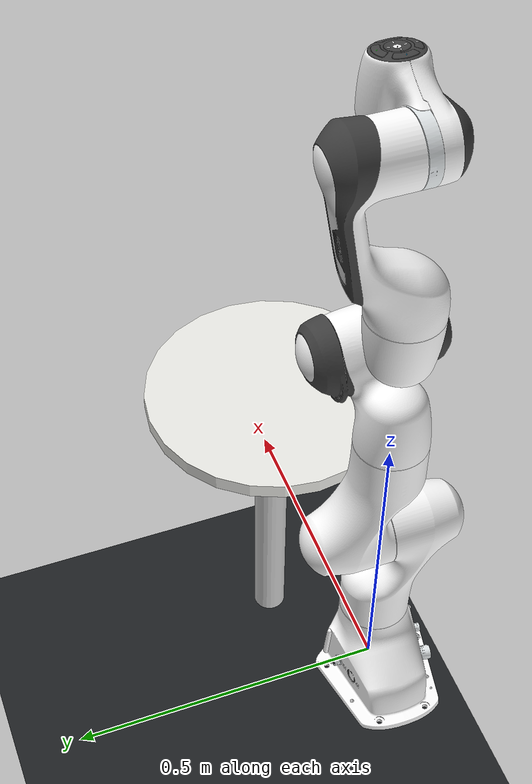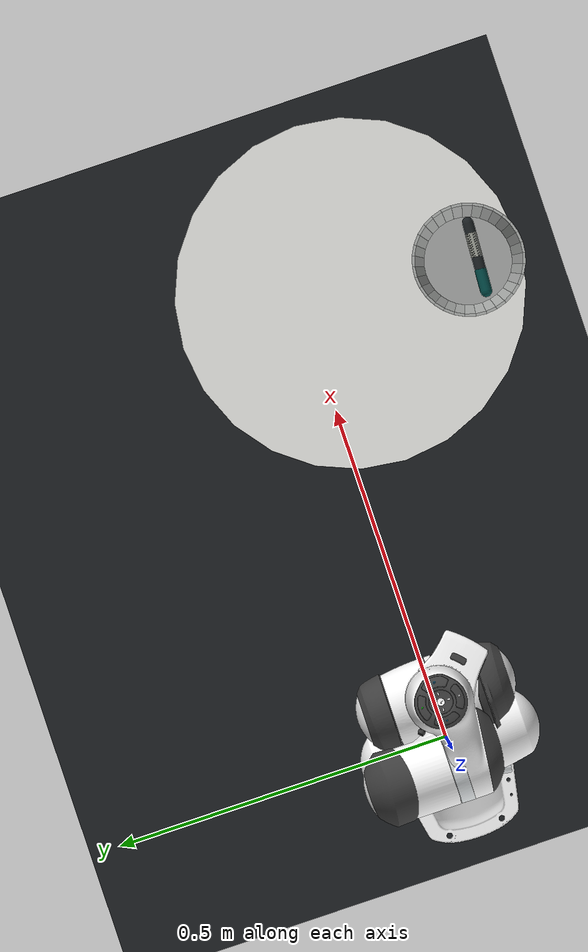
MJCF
<mujoco model="panda">
  <compiler angle="radian" autolimits="true" />
  <option integrator="implicitfast" timestep="0.001" cone="elliptic" impratio="10" />
  <default>
    <default class="panda">
      <material specular="0.5" shininess="0.25" />
      <joint armature="0.1" damping="1" axis="0 0 1" range="-2.8973 2.8973" />
      <general dyntype="none" biastype="affine" ctrlrange="-2.8973 2.8973" forcerange="-87 87" />
      <default class="finger">
        <joint axis="0 1 0" type="slide" range="0 0.04" />
      </default>
      <default class="visual">
        <geom type="mesh" contype="0" conaffinity="0" group="2" />
      </default>
      <default class="collision">
        <geom type="mesh" group="3" />
        <default class="fingertip_pad_collision_1">
          <geom type="box" size="0.0085 0.004 0.0085" pos="0 0.0055 0.0445" />
        </default>
        <default class="fingertip_pad_collision_2">
          <geom type="box" size="0.003 0.002 0.003" pos="0.0055 0.002 0.05" />
        </default>
        <default class="fingertip_pad_collision_3">
          <geom type="box" size="0.003 0.002 0.003" pos="-0.0055 0.002 0.05" />
        </default>
        <default class="fingertip_pad_collision_4">
          <geom type="box" size="0.003 0.002 0.0035" pos="0.0055 0.002 0.0395" />
        </default>
        <default class="fingertip_pad_collision_5">
          <geom type="box" size="0.003 0.002 0.0035" pos="-0.0055 0.002 0.0395" />
        </default>
      </default>
    </default>
    <default class="rq_2f85">
      <mesh scale="0.001 0.001 0.001" />
      <general biastype="affine" />
      <joint axis="1 0 0" />
      <default class="rq_driver">
        <joint range="0 0.8" armature="0.005" damping="0.1" solimplimit="0.95 0.99 0.001" solreflimit="0.005 1" />
      </default>
      <default class="rq_follower">
        <joint range="-0.872664 0.872664" armature="0.001" pos="0 -0.018 0.0065" solimplimit="0.95 0.99 0.001" solreflimit="0.005 1" />
      </default>
      <default class="rq_spring_link">
        <joint range="-0.29670597283 0.8" armature="0.001" stiffness="0.05" springref="2.62" damping="0.00125" />
      </default>
      <default class="rq_coupler">
        <joint range="-1.57 0" armature="0.001" solimplimit="0.95 0.99 0.001" solreflimit="0.005 1" />
      </default>
      <default class="rq_visual">
        <geom type="mesh" contype="0" conaffinity="0" group="2" />
      </default>
      <default class="rq_collision">
        <geom type="mesh" group="3" />
        <default class="rq_pad_box1">
          <geom mass="0" type="box" pos="0 -0.0026 0.028125" size="0.011 0.004 0.009375" friction="0.7" solimp="0.95 0.99 0.001" solref="0.004 1" priority="1" rgba="0.55 0.55 0.55 1" />
        </default>
        <default class="rq_pad_box2">
          <geom mass="0" type="box" pos="0 -0.0026 0.009375" size="0.011 0.004 0.009375" friction="0.6" solimp="0.95 0.99 0.001" solref="0.004 1" priority="1" rgba="0.45 0.45 0.45 1" />
        </default>
      </default>
    </default>
  </default>
  <asset>
    <material class="panda" name="white" rgba="1 1 1 1" />
    <material class="panda" name="off_white" rgba="0.901961 0.921569 0.929412 1" />
    <material class="panda" name="black" rgba="0.25 0.25 0.25 1" />
    <material class="panda" name="green" rgba="0 1 0 1" />
    <material class="panda" name="light_blue" rgba="0.039216 0.541176 0.780392 1" />
    <mesh name="link0_c" file="vendor/mujoco_menagerie/franka_emika_panda/assets/link0.stl" />
    <mesh name="link1_c" file="vendor/mujoco_menagerie/franka_emika_panda/assets/link1.stl" />
    <mesh name="link2_c" file="vendor/mujoco_menagerie/franka_emika_panda/assets/link2.stl" />
    <mesh name="link3_c" file="vendor/mujoco_menagerie/franka_emika_panda/assets/link3.stl" />
    <mesh name="link4_c" file="vendor/mujoco_menagerie/franka_emika_panda/assets/link4.stl" />
    <mesh name="link5_c0" file="vendor/mujoco_menagerie/franka_emika_panda/assets/link5_collision_0.obj" />
    <mesh name="link5_c1" file="vendor/mujoco_menagerie/franka_emika_panda/assets/link5_collision_1.obj" />
    <mesh name="link5_c2" file="vendor/mujoco_menagerie/franka_emika_panda/assets/link5_collision_2.obj" />
    <mesh name="link6_c" file="vendor/mujoco_menagerie/franka_emika_panda/assets/link6.stl" />
    <mesh name="link7_c" file="vendor/mujoco_menagerie/franka_emika_panda/assets/link7.stl" />
    <mesh name="hand_c" file="vendor/mujoco_menagerie/franka_emika_panda/assets/hand.stl" />
    <mesh file="vendor/mujoco_menagerie/franka_emika_panda/assets/link0_0.obj" />
    <mesh file="vendor/mujoco_menagerie/franka_emika_panda/assets/link0_1.obj" />
    <mesh file="vendor/mujoco_menagerie/franka_emika_panda/assets/link0_2.obj" />
    <mesh file="vendor/mujoco_menagerie/franka_emika_panda/assets/link0_3.obj" />
    <mesh file="vendor/mujoco_menagerie/franka_emika_panda/assets/link0_4.obj" />
    <mesh file="vendor/mujoco_menagerie/franka_emika_panda/assets/link0_5.obj" />
    <mesh file="vendor/mujoco_menagerie/franka_emika_panda/assets/link0_7.obj" />
    <mesh file="vendor/mujoco_menagerie/franka_emika_panda/assets/link0_8.obj" />
    <mesh file="vendor/mujoco_menagerie/franka_emika_panda/assets/link0_9.obj" />
    <mesh file="vendor/mujoco_menagerie/franka_emika_panda/assets/link0_10.obj" />
    <mesh file="vendor/mujoco_menagerie/franka_emika_panda/assets/link0_11.obj" />
    <mesh file="vendor/mujoco_menagerie/franka_emika_panda/assets/link1.obj" />
    <mesh file="vendor/mujoco_menagerie/franka_emika_panda/assets/link2.obj" />
    <mesh file="vendor/mujoco_menagerie/franka_emika_panda/assets/link3_0.obj" />
    <mesh file="vendor/mujoco_menagerie/franka_emika_panda/assets/link3_1.obj" />
    <mesh file="vendor/mujoco_menagerie/franka_emika_panda/assets/link3_2.obj" />
    <mesh file="vendor/mujoco_menagerie/franka_emika_panda/assets/link3_3.obj" />
    <mesh file="vendor/mujoco_menagerie/franka_emika_panda/assets/link4_0.obj" />
    <mesh file="vendor/mujoco_menagerie/franka_emika_panda/assets/link4_1.obj" />
    <mesh file="vendor/mujoco_menagerie/franka_emika_panda/assets/link4_2.obj" />
    <mesh file="vendor/mujoco_menagerie/franka_emika_panda/assets/link4_3.obj" />
    <mesh file="vendor/mujoco_menagerie/franka_emika_panda/assets/link5_0.obj" />
    <mesh file="vendor/mujoco_menagerie/franka_emika_panda/assets/link5_1.obj" />
    <mesh file="vendor/mujoco_menagerie/franka_emika_panda/assets/link5_2.obj" />
    <mesh file="vendor/mujoco_menagerie/franka_emika_panda/assets/link6_0.obj" />
    <mesh file="vendor/mujoco_menagerie/franka_emika_panda/assets/link6_1.obj" />
    <mesh file="vendor/mujoco_menagerie/franka_emika_panda/assets/link6_2.obj" />
    <mesh file="vendor/mujoco_menagerie/franka_emika_panda/assets/link6_3.obj" />
    <mesh file="vendor/mujoco_menagerie/franka_emika_panda/assets/link6_4.obj" />
    <mesh file="vendor/mujoco_menagerie/franka_emika_panda/assets/link6_5.obj" />
    <mesh file="vendor/mujoco_menagerie/franka_emika_panda/assets/link6_6.obj" />
    <mesh file="vendor/mujoco_menagerie/franka_emika_panda/assets/link6_7.obj" />
    <mesh file="vendor/mujoco_menagerie/franka_emika_panda/assets/link6_8.obj" />
    <mesh file="vendor/mujoco_menagerie/franka_emika_panda/assets/link6_9.obj" />
    <mesh file="vendor/mujoco_menagerie/franka_emika_panda/assets/link6_10.obj" />
    <mesh file="vendor/mujoco_menagerie/franka_emika_panda/assets/link6_11.obj" />
    <mesh file="vendor/mujoco_menagerie/franka_emika_panda/assets/link6_12.obj" />
    <mesh file="vendor/mujoco_menagerie/franka_emika_panda/assets/link6_13.obj" />
    <mesh file="vendor/mujoco_menagerie/franka_emika_panda/assets/link6_14.obj" />
    <mesh file="vendor/mujoco_menagerie/franka_emika_panda/assets/link6_15.obj" />
    <mesh file="vendor/mujoco_menagerie/franka_emika_panda/assets/link6_16.obj" />
    <mesh file="vendor/mujoco_menagerie/franka_emika_panda/assets/link7_0.obj" />
    <mesh file="vendor/mujoco_menagerie/franka_emika_panda/assets/link7_1.obj" />
    <mesh file="vendor/mujoco_menagerie/franka_emika_panda/assets/link7_2.obj" />
    <mesh file="vendor/mujoco_menagerie/franka_emika_panda/assets/link7_3.obj" />
    <mesh file="vendor/mujoco_menagerie/franka_emika_panda/assets/link7_4.obj" />
    <mesh file="vendor/mujoco_menagerie/franka_emika_panda/assets/link7_5.obj" />
    <mesh file="vendor/mujoco_menagerie/franka_emika_panda/assets/link7_6.obj" />
    <mesh file="vendor/mujoco_menagerie/franka_emika_panda/assets/link7_7.obj" />
    <mesh file="vendor/mujoco_menagerie/franka_emika_panda/assets/hand_0.obj" />
    <mesh file="vendor/mujoco_menagerie/franka_emika_panda/assets/hand_1.obj" />
    <mesh file="vendor/mujoco_menagerie/franka_emika_panda/assets/hand_2.obj" />
    <mesh file="vendor/mujoco_menagerie/franka_emika_panda/assets/hand_3.obj" />
    <mesh file="vendor/mujoco_menagerie/franka_emika_panda/assets/hand_4.obj" />
    <mesh file="vendor/mujoco_menagerie/franka_emika_panda/assets/finger_0.obj" />
    <mesh file="vendor/mujoco_menagerie/franka_emika_panda/assets/finger_1.obj" />
    <material name="rq_metal" rgba="0.58 0.58 0.58 1" />
    <material name="rq_silicone" rgba="0.1882 0.1882 0.1882 1" />
    <material name="rq_gray" rgba="0.4627 0.4627 0.4627 1" />
    <material name="rq_black" rgba="0.149 0.149 0.149 1" />
    <mesh class="rq_2f85" file="vendor/mujoco_menagerie/robotiq_2f85/assets/base_mount.stl" name="rq_base_mount" />
    <mesh class="rq_2f85" file="vendor/mujoco_menagerie/robotiq_2f85/assets/base.stl" name="rq_base" />
    <mesh class="rq_2f85" file="vendor/mujoco_menagerie/robotiq_2f85/assets/driver.stl" name="rq_driver" />
    <mesh class="rq_2f85" file="vendor/mujoco_menagerie/robotiq_2f85/assets/coupler.stl" name="rq_coupler" />
    <mesh class="rq_2f85" file="vendor/mujoco_menagerie/robotiq_2f85/assets/follower.stl" name="rq_follower" />
    <mesh class="rq_2f85" file="vendor/mujoco_menagerie/robotiq_2f85/assets/pad.stl" name="rq_pad" />
    <mesh class="rq_2f85" file="vendor/mujoco_menagerie/robotiq_2f85/assets/silicone_pad.stl" name="rq_silicone_pad" />
    <mesh class="rq_2f85" file="vendor/mujoco_menagerie/robotiq_2f85/assets/spring_link.stl" name="rq_spring_link" />
    <mesh name="bowl_wall_0" vertex="0.062 0 0 0.0608086874 0.0120956 0 0.066 0 0 0.0647318285 0.0128759613 0 0.079 0 0.055 0.0774820372 0.0154121354 0.055 0.083 0 0.055 0.0814051783 0.0161924967 0.055" />
    <mesh name="bowl_wall_1" vertex="0.0608086874 0.0120956 0 0.057280531 0.0237263728 0 0.0647318285 0.0128759613 0 0.0609760491 0.0252571065 0 0.0774820372 0.0154121354 0.055 0.0729864831 0.0302319912 0.055 0.0814051783 0.0161924967 0.055 0.0766820012 0.0317627249 0.055" />
    <mesh name="bowl_wall_2" vertex="0.057280531 0.0237263728 0 0.051551116 0.0344453544 0 0.0609760491 0.0252571065 0 0.0548769944 0.0366676354 0 0.0729864831 0.0302319912 0.055 0.0656860994 0.0438900484 0.055 0.0766820012 0.0317627249 0.055 0.0690119778 0.0461123293 0.055" />
    <mesh name="bowl_wall_3" vertex="0.051551116 0.0344453544 0 0.0438406204 0.0438406204 0 0.0548769944 0.0366676354 0 0.0466690476 0.0466690476 0 0.0656860994 0.0438900484 0.055 0.0558614357 0.0558614357 0.055 0.0690119778 0.0461123293 0.055 0.0586898628 0.0586898628 0.055" />
    <mesh name="bowl_wall_4" vertex="0.0438406204 0.0438406204 0 0.0344453544 0.051551116 0 0.0466690476 0.0466690476 0 0.0366676354 0.0548769944 0 0.0558614357 0.0558614357 0.055 0.0438900484 0.0656860994 0.055 0.0586898628 0.0586898628 0.055 0.0461123293 0.0690119778 0.055" />
    <mesh name="bowl_wall_5" vertex="0.0344453544 0.051551116 0 0.0237263728 0.057280531 0 0.0366676354 0.0548769944 0 0.0252571065 0.0609760491 0 0.0438900484 0.0656860994 0.055 0.0302319912 0.0729864831 0.055 0.0461123293 0.0690119778 0.055 0.0317627249 0.0766820012 0.055" />
    <mesh name="bowl_wall_6" vertex="0.0237263728 0.057280531 0 0.0120956 0.0608086874 0 0.0252571065 0.0609760491 0 0.0128759613 0.0647318285 0 0.0302319912 0.0729864831 0.055 0.0154121354 0.0774820372 0.055 0.0317627249 0.0766820012 0.055 0.0161924967 0.0814051783 0.055" />
    <mesh name="bowl_wall_7" vertex="0.0120956 0.0608086874 0 3.79640508e-18 0.062 0 0.0128759613 0.0647318285 0 4.04133444e-18 0.066 0 0.0154121354 0.0774820372 0.055 4.83735486e-18 0.079 0.055 0.0161924967 0.0814051783 0.055 5.08228422e-18 0.083 0.055" />
    <mesh name="bowl_wall_8" vertex="3.79640508e-18 0.062 0 -0.0120956 0.0608086874 0 4.04133444e-18 0.066 0 -0.0128759613 0.0647318285 0 4.83735486e-18 0.079 0.055 -0.0154121354 0.0774820372 0.055 5.08228422e-18 0.083 0.055 -0.0161924967 0.0814051783 0.055" />
    <mesh name="bowl_wall_9" vertex="-0.0120956 0.0608086874 0 -0.0237263728 0.057280531 0 -0.0128759613 0.0647318285 0 -0.0252571065 0.0609760491 0 -0.0154121354 0.0774820372 0.055 -0.0302319912 0.0729864831 0.055 -0.0161924967 0.0814051783 0.055 -0.0317627249 0.0766820012 0.055" />
    <mesh name="bowl_wall_10" vertex="-0.0237263728 0.057280531 0 -0.0344453544 0.051551116 0 -0.0252571065 0.0609760491 0 -0.0366676354 0.0548769944 0 -0.0302319912 0.0729864831 0.055 -0.0438900484 0.0656860994 0.055 -0.0317627249 0.0766820012 0.055 -0.0461123293 0.0690119778 0.055" />
    <mesh name="bowl_wall_11" vertex="-0.0344453544 0.051551116 0 -0.0438406204 0.0438406204 0 -0.0366676354 0.0548769944 0 -0.0466690476 0.0466690476 0 -0.0438900484 0.0656860994 0.055 -0.0558614357 0.0558614357 0.055 -0.0461123293 0.0690119778 0.055 -0.0586898628 0.0586898628 0.055" />
    <mesh name="bowl_wall_12" vertex="-0.0438406204 0.0438406204 0 -0.051551116 0.0344453544 0 -0.0466690476 0.0466690476 0 -0.0548769944 0.0366676354 0 -0.0558614357 0.0558614357 0.055 -0.0656860994 0.0438900484 0.055 -0.0586898628 0.0586898628 0.055 -0.0690119778 0.0461123293 0.055" />
    <mesh name="bowl_wall_13" vertex="-0.051551116 0.0344453544 0 -0.057280531 0.0237263728 0 -0.0548769944 0.0366676354 0 -0.0609760491 0.0252571065 0 -0.0656860994 0.0438900484 0.055 -0.0729864831 0.0302319912 0.055 -0.0690119778 0.0461123293 0.055 -0.0766820012 0.0317627249 0.055" />
    <mesh name="bowl_wall_14" vertex="-0.057280531 0.0237263728 0 -0.0608086874 0.0120956 0 -0.0609760491 0.0252571065 0 -0.0647318285 0.0128759613 0 -0.0729864831 0.0302319912 0.055 -0.0774820372 0.0154121354 0.055 -0.0766820012 0.0317627249 0.055 -0.0814051783 0.0161924967 0.055" />
    <mesh name="bowl_wall_15" vertex="-0.0608086874 0.0120956 0 -0.062 7.59281015e-18 0 -0.0647318285 0.0128759613 0 -0.066 8.08266887e-18 0 -0.0774820372 0.0154121354 0.055 -0.079 9.67470971e-18 0.055 -0.0814051783 0.0161924967 0.055 -0.083 1.01645684e-17 0.055" />
    <mesh name="bowl_wall_16" vertex="-0.062 7.59281015e-18 0 -0.0608086874 -0.0120956 0 -0.066 8.08266887e-18 0 -0.0647318285 -0.0128759613 0 -0.079 9.67470971e-18 0.055 -0.0774820372 -0.0154121354 0.055 -0.083 1.01645684e-17 0.055 -0.0814051783 -0.0161924967 0.055" />
    <mesh name="bowl_wall_17" vertex="-0.0608086874 -0.0120956 0 -0.057280531 -0.0237263728 0 -0.0647318285 -0.0128759613 0 -0.0609760491 -0.0252571065 0 -0.0774820372 -0.0154121354 0.055 -0.0729864831 -0.0302319912 0.055 -0.0814051783 -0.0161924967 0.055 -0.0766820012 -0.0317627249 0.055" />
    <mesh name="bowl_wall_18" vertex="-0.057280531 -0.0237263728 0 -0.051551116 -0.0344453544 0 -0.0609760491 -0.0252571065 0 -0.0548769944 -0.0366676354 0 -0.0729864831 -0.0302319912 0.055 -0.0656860994 -0.0438900484 0.055 -0.0766820012 -0.0317627249 0.055 -0.0690119778 -0.0461123293 0.055" />
    <mesh name="bowl_wall_19" vertex="-0.051551116 -0.0344453544 0 -0.0438406204 -0.0438406204 0 -0.0548769944 -0.0366676354 0 -0.0466690476 -0.0466690476 0 -0.0656860994 -0.0438900484 0.055 -0.0558614357 -0.0558614357 0.055 -0.0690119778 -0.0461123293 0.055 -0.0586898628 -0.0586898628 0.055" />
    <mesh name="bowl_wall_20" vertex="-0.0438406204 -0.0438406204 0 -0.0344453544 -0.051551116 0 -0.0466690476 -0.0466690476 0 -0.0366676354 -0.0548769944 0 -0.0558614357 -0.0558614357 0.055 -0.0438900484 -0.0656860994 0.055 -0.0586898628 -0.0586898628 0.055 -0.0461123293 -0.0690119778 0.055" />
    <mesh name="bowl_wall_21" vertex="-0.0344453544 -0.051551116 0 -0.0237263728 -0.057280531 0 -0.0366676354 -0.0548769944 0 -0.0252571065 -0.0609760491 0 -0.0438900484 -0.0656860994 0.055 -0.0302319912 -0.0729864831 0.055 -0.0461123293 -0.0690119778 0.055 -0.0317627249 -0.0766820012 0.055" />
    <mesh name="bowl_wall_22" vertex="-0.0237263728 -0.057280531 0 -0.0120956 -0.0608086874 0 -0.0252571065 -0.0609760491 0 -0.0128759613 -0.0647318285 0 -0.0302319912 -0.0729864831 0.055 -0.0154121354 -0.0774820372 0.055 -0.0317627249 -0.0766820012 0.055 -0.0161924967 -0.0814051783 0.055" />
    <mesh name="bowl_wall_23" vertex="-0.0120956 -0.0608086874 0 -1.13892152e-17 -0.062 0 -0.0128759613 -0.0647318285 0 -1.21240033e-17 -0.066 0 -0.0154121354 -0.0774820372 0.055 -1.45120646e-17 -0.079 0.055 -0.0161924967 -0.0814051783 0.055 -1.52468526e-17 -0.083 0.055" />
    <mesh name="bowl_wall_24" vertex="-1.13892152e-17 -0.062 0 0.0120956 -0.0608086874 0 -1.21240033e-17 -0.066 0 0.0128759613 -0.0647318285 0 -1.45120646e-17 -0.079 0.055 0.0154121354 -0.0774820372 0.055 -1.52468526e-17 -0.083 0.055 0.0161924967 -0.0814051783 0.055" />
    <mesh name="bowl_wall_25" vertex="0.0120956 -0.0608086874 0 0.0237263728 -0.057280531 0 0.0128759613 -0.0647318285 0 0.0252571065 -0.0609760491 0 0.0154121354 -0.0774820372 0.055 0.0302319912 -0.0729864831 0.055 0.0161924967 -0.0814051783 0.055 0.0317627249 -0.0766820012 0.055" />
    <mesh name="bowl_wall_26" vertex="0.0237263728 -0.057280531 0 0.0344453544 -0.051551116 0 0.0252571065 -0.0609760491 0 0.0366676354 -0.0548769944 0 0.0302319912 -0.0729864831 0.055 0.0438900484 -0.0656860994 0.055 0.0317627249 -0.0766820012 0.055 0.0461123293 -0.0690119778 0.055" />
    <mesh name="bowl_wall_27" vertex="0.0344453544 -0.051551116 0 0.0438406204 -0.0438406204 0 0.0366676354 -0.0548769944 0 0.0466690476 -0.0466690476 0 0.0438900484 -0.0656860994 0.055 0.0558614357 -0.0558614357 0.055 0.0461123293 -0.0690119778 0.055 0.0586898628 -0.0586898628 0.055" />
    <mesh name="bowl_wall_28" vertex="0.0438406204 -0.0438406204 0 0.051551116 -0.0344453544 0 0.0466690476 -0.0466690476 0 0.0548769944 -0.0366676354 0 0.0558614357 -0.0558614357 0.055 0.0656860994 -0.0438900484 0.055 0.0586898628 -0.0586898628 0.055 0.0690119778 -0.0461123293 0.055" />
    <mesh name="bowl_wall_29" vertex="0.051551116 -0.0344453544 0 0.057280531 -0.0237263728 0 0.0548769944 -0.0366676354 0 0.0609760491 -0.0252571065 0 0.0656860994 -0.0438900484 0.055 0.0729864831 -0.0302319912 0.055 0.0690119778 -0.0461123293 0.055 0.0766820012 -0.0317627249 0.055" />
    <mesh name="bowl_wall_30" vertex="0.057280531 -0.0237263728 0 0.0608086874 -0.0120956 0 0.0609760491 -0.0252571065 0 0.0647318285 -0.0128759613 0 0.0729864831 -0.0302319912 0.055 0.0774820372 -0.0154121354 0.055 0.0766820012 -0.0317627249 0.055 0.0814051783 -0.0161924967 0.055" />
    <mesh name="bowl_wall_31" vertex="0.0608086874 -0.0120956 0 0.062 -1.51856203e-17 0 0.0647318285 -0.0128759613 0 0.066 -1.61653377e-17 0 0.0774820372 -0.0154121354 0.055 0.079 -1.93494194e-17 0.055 0.0814051783 -0.0161924967 0.055 0.083 -2.03291369e-17 0.055" />
  </asset>
  <worldbody>
    <light name="top" pos="0 0 2" mode="trackcom" castshadow="false" />
    <body name="link0" childclass="panda" gravcomp="1">
      <inertial mass="0.629769" pos="-0.041018 -0.00014 0.049974" fullinertia="0.00315 0.00388 0.004285 8.2904e-7 0.00015 8.2299e-6" />
      <geom mesh="link0_0" material="off_white" class="visual" />
      <geom mesh="link0_1" material="black" class="visual" />
      <geom mesh="link0_2" material="off_white" class="visual" />
      <geom mesh="link0_3" material="black" class="visual" />
      <geom mesh="link0_4" material="off_white" class="visual" />
      <geom mesh="link0_5" material="black" class="visual" />
      <geom mesh="link0_7" material="white" class="visual" />
      <geom mesh="link0_8" material="white" class="visual" />
      <geom mesh="link0_9" material="black" class="visual" />
      <geom mesh="link0_10" material="off_white" class="visual" />
      <geom mesh="link0_11" material="white" class="visual" />
      <geom mesh="link0_c" class="collision" />
      <body name="link1" pos="0 0 0.333" gravcomp="1">
        <inertial mass="4.970684" pos="0.003875 0.002081 -0.04762" fullinertia="0.70337 0.70661 0.0091170 -0.00013900 0.0067720 0.019169" />
        <joint name="joint1" />
        <geom material="white" mesh="link1" class="visual" />
        <geom mesh="link1_c" class="collision" />
        <body name="link2" quat="1 -1 0 0" gravcomp="1">
          <inertial mass="0.646926" pos="-0.003141 -0.02872 0.003495" fullinertia="0.0079620 2.8110e-2 2.5995e-2 -3.925e-3 1.0254e-2 7.04e-4" />
          <joint name="joint2" range="-1.7628 1.7628" />
          <geom material="white" mesh="link2" class="visual" />
          <geom mesh="link2_c" class="collision" />
          <body name="link3" pos="0 -0.316 0" quat="1 1 0 0" gravcomp="1">
            <joint name="joint3" />
            <inertial mass="3.228604" pos="2.7518e-2 3.9252e-2 -6.6502e-2" fullinertia="3.7242e-2 3.6155e-2 1.083e-2 -4.761e-3 -1.1396e-2 -1.2805e-2" />
            <geom mesh="link3_0" material="white" class="visual" />
            <geom mesh="link3_1" material="white" class="visual" />
            <geom mesh="link3_2" material="white" class="visual" />
            <geom mesh="link3_3" material="black" class="visual" />
            <geom mesh="link3_c" class="collision" />
            <body name="link4" pos="0.0825 0 0" quat="1 1 0 0" gravcomp="1">
              <inertial mass="3.587895" pos="-5.317e-2 1.04419e-1 2.7454e-2" fullinertia="2.5853e-2 1.9552e-2 2.8323e-2 7.796e-3 -1.332e-3 8.641e-3" />
              <joint name="joint4" range="-3.0718 -0.0698" />
              <geom mesh="link4_0" material="white" class="visual" />
              <geom mesh="link4_1" material="white" class="visual" />
              <geom mesh="link4_2" material="black" class="visual" />
              <geom mesh="link4_3" material="white" class="visual" />
              <geom mesh="link4_c" class="collision" />
              <body name="link5" pos="-0.0825 0.384 0" quat="1 -1 0 0" gravcomp="1">
                <inertial mass="1.225946" pos="-1.1953e-2 4.1065e-2 -3.8437e-2" fullinertia="3.5549e-2 2.9474e-2 8.627e-3 -2.117e-3 -4.037e-3 2.29e-4" />
                <joint name="joint5" />
                <geom mesh="link5_0" material="black" class="visual" />
                <geom mesh="link5_1" material="white" class="visual" />
                <geom mesh="link5_2" material="white" class="visual" />
                <geom mesh="link5_c0" class="collision" />
                <geom mesh="link5_c1" class="collision" />
                <geom mesh="link5_c2" class="collision" />
                <body name="link6" quat="1 1 0 0" gravcomp="1">
                  <inertial mass="1.666555" pos="6.0149e-2 -1.4117e-2 -1.0517e-2" fullinertia="1.964e-3 4.354e-3 5.433e-3 1.09e-4 -1.158e-3 3.41e-4" />
                  <joint name="joint6" range="-0.0175 3.7525" />
                  <geom mesh="link6_0" material="off_white" class="visual" />
                  <geom mesh="link6_1" material="white" class="visual" />
                  <geom mesh="link6_2" material="black" class="visual" />
                  <geom mesh="link6_3" material="white" class="visual" />
                  <geom mesh="link6_4" material="white" class="visual" />
                  <geom mesh="link6_5" material="white" class="visual" />
                  <geom mesh="link6_6" material="white" class="visual" />
                  <geom mesh="link6_7" material="light_blue" class="visual" />
                  <geom mesh="link6_8" material="light_blue" class="visual" />
                  <geom mesh="link6_9" material="black" class="visual" />
                  <geom mesh="link6_10" material="black" class="visual" />
                  <geom mesh="link6_11" material="white" class="visual" />
                  <geom mesh="link6_12" material="green" class="visual" />
                  <geom mesh="link6_13" material="white" class="visual" />
                  <geom mesh="link6_14" material="black" class="visual" />
                  <geom mesh="link6_15" material="black" class="visual" />
                  <geom mesh="link6_16" material="white" class="visual" />
                  <geom mesh="link6_c" class="collision" />
                  <body name="link7" pos="0.088 0 0" quat="1 1 0 0" gravcomp="1">
                    <inertial mass="7.35522e-01" pos="1.0517e-2 -4.252e-3 6.1597e-2" fullinertia="1.2516e-2 1.0027e-2 4.815e-3 -4.28e-4 -1.196e-3 -7.41e-4" />
                    <joint name="joint7" />
                    <geom mesh="link7_0" material="white" class="visual" />
                    <geom mesh="link7_1" material="black" class="visual" />
                    <geom mesh="link7_2" material="black" class="visual" />
                    <geom mesh="link7_3" material="black" class="visual" />
                    <geom mesh="link7_4" material="black" class="visual" />
                    <geom mesh="link7_5" material="black" class="visual" />
                    <geom mesh="link7_6" material="black" class="visual" />
                    <geom mesh="link7_7" material="white" class="visual" />
                    <geom mesh="link7_c" class="collision" />
                    <body name="tool_flange" pos="0 0 0.107" quat="0.9238795325 0 0 -0.3826834324" gravcomp="1">
                      <site name="flange_site" size=".003" />
                      <body name="rq_base_mount" pos="0 0 0.007" childclass="rq_2f85" gravcomp="1">
                        <geom class="rq_visual" mesh="rq_base_mount" material="rq_black" />
                        <geom class="rq_collision" mesh="rq_base_mount" />
                        <body name="rq_base" pos="0 0 0.0038" quat="1 0 0 -1" gravcomp="1">
                          <inertial mass="0.777441" pos="0 -2.70394e-05 0.0354675" quat="1 -0.00152849 0 0" diaginertia="0.000260285 0.000225381 0.000152708" />
                          <geom class="rq_visual" mesh="rq_base" material="rq_black" />
                          <geom class="rq_collision" mesh="rq_base" />
                          <site name="rq_pinch" pos="0 0 0.145" type="sphere" group="5" rgba="0.9 0.9 0.9 1" size="0.005" />
                          <body name="rq_right_driver" pos="0 0.0306011 0.054904" gravcomp="1">
                            <inertial mass="0.00899563" pos="2.96931e-12 0.0177547 0.00107314" quat="0.681301 0.732003 0 0" diaginertia="1.72352e-06 1.60906e-06 3.22006e-07" />
                            <joint name="rq_right_driver_joint" class="rq_driver" />
                            <geom class="rq_visual" mesh="rq_driver" material="rq_gray" />
                            <geom class="rq_collision" mesh="rq_driver" />
                            <body name="rq_right_coupler" pos="0 0.0315 -0.0041" gravcomp="1">
                              <inertial mass="0.0140974" pos="0 0.00301209 0.0232175" quat="0.705636 -0.0455904 0.0455904 0.705636" diaginertia="4.16206e-06 3.52216e-06 8.88131e-07" />
                              <joint name="rq_right_coupler_joint" class="rq_coupler" />
                              <geom class="rq_visual" mesh="rq_coupler" material="rq_black" />
                              <geom class="rq_collision" mesh="rq_coupler" />
                            </body>
                          </body>
                          <body name="rq_right_spring_link" pos="0 0.0132 0.0609" gravcomp="1">
                            <inertial mass="0.0221642" pos="-8.65005e-09 0.0181624 0.0212658" quat="0.663403 -0.244737 0.244737 0.663403" diaginertia="8.96853e-06 6.71733e-06 2.63931e-06" />
                            <joint name="rq_right_spring_link_joint" class="rq_spring_link" />
                            <geom class="rq_visual" mesh="rq_spring_link" material="rq_black" />
                            <geom class="rq_collision" mesh="rq_spring_link" />
                            <body name="rq_right_follower" pos="0 0.055 0.0375" gravcomp="1">
                              <inertial mass="0.0125222" pos="0 -0.011046 0.0124786" quat="1 0.1664 0 0" diaginertia="2.67415e-06 2.4559e-06 6.02031e-07" />
                              <joint name="rq_right_follower_joint" class="rq_follower" />
                              <geom class="rq_visual" mesh="rq_follower" material="rq_black" />
                              <geom class="rq_collision" mesh="rq_follower" />
                              <body name="rq_right_pad" pos="0 -0.0189 0.01352" gravcomp="1">
                                <geom class="rq_pad_box1" name="rq_right_pad1" />
                                <geom class="rq_pad_box2" name="rq_right_pad2" />
                                <inertial mass="0.0035" pos="0 -0.0025 0.0185" quat="0.707107 0 0 0.707107" diaginertia="4.73958e-07 3.64583e-07 1.23958e-07" />
                                <geom class="rq_visual" mesh="rq_pad" />
                                <body name="rq_right_silicone_pad" gravcomp="1">
                                  <geom class="rq_visual" mesh="rq_silicone_pad" material="rq_black" />
                                </body>
                              </body>
                            </body>
                          </body>
                          <body name="rq_left_driver" pos="0 -0.0306011 0.054904" quat="0 0 0 1" gravcomp="1">
                            <inertial mass="0.00899563" pos="0 0.0177547 0.00107314" quat="0.681301 0.732003 0 0" diaginertia="1.72352e-06 1.60906e-06 3.22006e-07" />
                            <joint name="rq_left_driver_joint" class="rq_driver" />
                            <geom class="rq_visual" mesh="rq_driver" material="rq_gray" />
                            <geom class="rq_collision" mesh="rq_driver" />
                            <body name="rq_left_coupler" pos="0 0.0315 -0.0041" gravcomp="1">
                              <inertial mass="0.0140974" pos="0 0.00301209 0.0232175" quat="0.705636 -0.0455904 0.0455904 0.705636" diaginertia="4.16206e-06 3.52216e-06 8.88131e-07" />
                              <joint name="rq_left_coupler_joint" class="rq_coupler" />
                              <geom class="rq_visual" mesh="rq_coupler" material="rq_black" />
                              <geom class="rq_collision" mesh="rq_coupler" />
                            </body>
                          </body>
                          <body name="rq_left_spring_link" pos="0 -0.0132 0.0609" quat="0 0 0 1" gravcomp="1">
                            <inertial mass="0.0221642" pos="-8.65005e-09 0.0181624 0.0212658" quat="0.663403 -0.244737 0.244737 0.663403" diaginertia="8.96853e-06 6.71733e-06 2.63931e-06" />
                            <joint name="rq_left_spring_link_joint" class="rq_spring_link" />
                            <geom class="rq_visual" mesh="rq_spring_link" material="rq_black" />
                            <geom class="rq_collision" mesh="rq_spring_link" />
                            <body name="rq_left_follower" pos="0 0.055 0.0375" gravcomp="1">
                              <inertial mass="0.0125222" pos="0 -0.011046 0.0124786" quat="1 0.1664 0 0" diaginertia="2.67415e-06 2.4559e-06 6.02031e-07" />
                              <joint name="rq_left_follower_joint" class="rq_follower" />
                              <geom class="rq_visual" mesh="rq_follower" material="rq_black" />
                              <geom class="rq_collision" mesh="rq_follower" />
                              <body name="rq_left_pad" pos="0 -0.0189 0.01352" gravcomp="1">
                                <geom class="rq_pad_box1" name="rq_left_pad1" />
                                <geom class="rq_pad_box2" name="rq_left_pad2" />
                                <inertial mass="0.0035" pos="0 -0.0025 0.0185" quat="1 0 0 1" diaginertia="4.73958e-07 3.64583e-07 1.23958e-07" />
                                <geom class="rq_visual" mesh="rq_pad" />
                                <body name="rq_left_silicone_pad" gravcomp="1">
                                  <geom class="rq_visual" mesh="rq_silicone_pad" material="rq_black" />
                                </body>
                              </body>
                            </body>
                          </body>
                        </body>
                      </body>
                    </body>
                  </body>
                </body>
              </body>
            </body>
          </body>
        </body>
      </body>
    </body>
    <light pos=".4 -.1 2" dir="0 0 -1" diffuse=".65 .65 .65" castshadow="false" />
    <geom name="floor" type="plane" size="3 3 .1" pos="0 0 -.85" rgba=".12 .13 .14 1" />
    <camera name="ext1" pos="0.365679991 -0.422668111 0.431105219" quat="0.842129202 0.348788599 -0.181374309 -0.369145336" resolution="320 180" sensorsize="320 180" focalpixel="143.667215 143.667215" principalpixel="0 0" />
    <camera name="ext2" pos="0.450217446 0.29805365 0.400278018" quat="-0.219758095 -0.104919958 0.336116407 0.909793352" resolution="320 180" sensorsize="320 180" focalpixel="139.955752 139.955752" principalpixel="0 0" />
    <body name="table" pos="0.657256695 -0.0750696136 -0.0551144008">
      <geom name="table_top" type="cylinder" size="0.25742751 0.015" rgba=".92 .92 .9 1" friction="0.6 0.005 0.0001" />
      <geom type="cylinder" pos="0 0 -.35" size=".035 .35" rgba=".8 .8 .8 1" />
    </body>
    <body name="bowl" pos="0.647 -0.253 -0.0401144008" quat="1 0 0 0">
      <freejoint name="bowl_free" />
      <geom name="bowl_base" type="cylinder" pos="0 0 0.004" size="0.066 0.004" mass="0.063" rgba=".65 .66 .65 1" friction="0.5 0.005 0.0001" />
      <geom name="bowl_wall_0" type="mesh" mesh="bowl_wall_0" mass="0.0036562499999999998" rgba=".68 .69 .68 1" friction="0.5 0.005 0.0001" />
      <geom name="bowl_wall_1" type="mesh" mesh="bowl_wall_1" mass="0.0036562499999999998" rgba=".68 .69 .68 1" friction="0.5 0.005 0.0001" />
      <geom name="bowl_wall_2" type="mesh" mesh="bowl_wall_2" mass="0.0036562499999999998" rgba=".68 .69 .68 1" friction="0.5 0.005 0.0001" />
      <geom name="bowl_wall_3" type="mesh" mesh="bowl_wall_3" mass="0.0036562499999999998" rgba=".68 .69 .68 1" friction="0.5 0.005 0.0001" />
      <geom name="bowl_wall_4" type="mesh" mesh="bowl_wall_4" mass="0.0036562499999999998" rgba=".68 .69 .68 1" friction="0.5 0.005 0.0001" />
      <geom name="bowl_wall_5" type="mesh" mesh="bowl_wall_5" mass="0.0036562499999999998" rgba=".68 .69 .68 1" friction="0.5 0.005 0.0001" />
      <geom name="bowl_wall_6" type="mesh" mesh="bowl_wall_6" mass="0.0036562499999999998" rgba=".68 .69 .68 1" friction="0.5 0.005 0.0001" />
      <geom name="bowl_wall_7" type="mesh" mesh="bowl_wall_7" mass="0.0036562499999999998" rgba=".68 .69 .68 1" friction="0.5 0.005 0.0001" />
      <geom name="bowl_wall_8" type="mesh" mesh="bowl_wall_8" mass="0.0036562499999999998" rgba=".68 .69 .68 1" friction="0.5 0.005 0.0001" />
      <geom name="bowl_wall_9" type="mesh" mesh="bowl_wall_9" mass="0.0036562499999999998" rgba=".68 .69 .68 1" friction="0.5 0.005 0.0001" />
      <geom name="bowl_wall_10" type="mesh" mesh="bowl_wall_10" mass="0.0036562499999999998" rgba=".68 .69 .68 1" friction="0.5 0.005 0.0001" />
      <geom name="bowl_wall_11" type="mesh" mesh="bowl_wall_11" mass="0.0036562499999999998" rgba=".68 .69 .68 1" friction="0.5 0.005 0.0001" />
      <geom name="bowl_wall_12" type="mesh" mesh="bowl_wall_12" mass="0.0036562499999999998" rgba=".68 .69 .68 1" friction="0.5 0.005 0.0001" />
      <geom name="bowl_wall_13" type="mesh" mesh="bowl_wall_13" mass="0.0036562499999999998" rgba=".68 .69 .68 1" friction="0.5 0.005 0.0001" />
      <geom name="bowl_wall_14" type="mesh" mesh="bowl_wall_14" mass="0.0036562499999999998" rgba=".68 .69 .68 1" friction="0.5 0.005 0.0001" />
      <geom name="bowl_wall_15" type="mesh" mesh="bowl_wall_15" mass="0.0036562499999999998" rgba=".68 .69 .68 1" friction="0.5 0.005 0.0001" />
      <geom name="bowl_wall_16" type="mesh" mesh="bowl_wall_16" mass="0.0036562499999999998" rgba=".68 .69 .68 1" friction="0.5 0.005 0.0001" />
      <geom name="bowl_wall_17" type="mesh" mesh="bowl_wall_17" mass="0.0036562499999999998" rgba=".68 .69 .68 1" friction="0.5 0.005 0.0001" />
      <geom name="bowl_wall_18" type="mesh" mesh="bowl_wall_18" mass="0.0036562499999999998" rgba=".68 .69 .68 1" friction="0.5 0.005 0.0001" />
      <geom name="bowl_wall_19" type="mesh" mesh="bowl_wall_19" mass="0.0036562499999999998" rgba=".68 .69 .68 1" friction="0.5 0.005 0.0001" />
      <geom name="bowl_wall_20" type="mesh" mesh="bowl_wall_20" mass="0.0036562499999999998" rgba=".68 .69 .68 1" friction="0.5 0.005 0.0001" />
      <geom name="bowl_wall_21" type="mesh" mesh="bowl_wall_21" mass="0.0036562499999999998" rgba=".68 .69 .68 1" friction="0.5 0.005 0.0001" />
      <geom name="bowl_wall_22" type="mesh" mesh="bowl_wall_22" mass="0.0036562499999999998" rgba=".68 .69 .68 1" friction="0.5 0.005 0.0001" />
      <geom name="bowl_wall_23" type="mesh" mesh="bowl_wall_23" mass="0.0036562499999999998" rgba=".68 .69 .68 1" friction="0.5 0.005 0.0001" />
      <geom name="bowl_wall_24" type="mesh" mesh="bowl_wall_24" mass="0.0036562499999999998" rgba=".68 .69 .68 1" friction="0.5 0.005 0.0001" />
      <geom name="bowl_wall_25" type="mesh" mesh="bowl_wall_25" mass="0.0036562499999999998" rgba=".68 .69 .68 1" friction="0.5 0.005 0.0001" />
      <geom name="bowl_wall_26" type="mesh" mesh="bowl_wall_26" mass="0.0036562499999999998" rgba=".68 .69 .68 1" friction="0.5 0.005 0.0001" />
      <geom name="bowl_wall_27" type="mesh" mesh="bowl_wall_27" mass="0.0036562499999999998" rgba=".68 .69 .68 1" friction="0.5 0.005 0.0001" />
      <geom name="bowl_wall_28" type="mesh" mesh="bowl_wall_28" mass="0.0036562499999999998" rgba=".68 .69 .68 1" friction="0.5 0.005 0.0001" />
      <geom name="bowl_wall_29" type="mesh" mesh="bowl_wall_29" mass="0.0036562499999999998" rgba=".68 .69 .68 1" friction="0.5 0.005 0.0001" />
      <geom name="bowl_wall_30" type="mesh" mesh="bowl_wall_30" mass="0.0036562499999999998" rgba=".68 .69 .68 1" friction="0.5 0.005 0.0001" />
      <geom name="bowl_wall_31" type="mesh" mesh="bowl_wall_31" mass="0.0036562499999999998" rgba=".68 .69 .68 1" friction="0.5 0.005 0.0001" />
    </body>
    <body name="pen" pos="0.648 -0.267 -0.0232784008" quat="0.0299955002 0 0 0.999550034">
      <freejoint name="pen_free" />
      <geom name="pen_barrel" type="capsule" fromto="-0.0516 0 0 0.02 0 0" size="0.0084" mass="0.01296" rgba=".12 .14 .15 1" friction="0.8 0.01 0.0001" condim="4" solref=".004 1" />
      <geom name="pen_cap" type="capsule" fromto="0.02 0 0 0.0516 0 0" size="0.008735999999999999" mass="0.00504" rgba=".01 .30 .29 1" friction="0.8 0.01 0.0001" condim="4" solref=".004 1" />
      <geom name="pen_label" type="cylinder" pos="-.018 0 0" quat=".70710678 0 .70710678 0" size="0.0084168 0.018" rgba=".62 .63 .59 1" contype="0" conaffinity="0" mass="0" />
    </body>
  </worldbody>
  <actuator>
    <general class="panda" name="actuator1" joint="joint1" gainprm="4500" biasprm="0 -4500 -450" />
    <general class="panda" name="actuator2" joint="joint2" gainprm="4500" biasprm="0 -4500 -450" ctrlrange="-1.7628 1.7628" />
    <general class="panda" name="actuator3" joint="joint3" gainprm="3500" biasprm="0 -3500 -350" />
    <general class="panda" name="actuator4" joint="joint4" gainprm="3500" biasprm="0 -3500 -350" ctrlrange="-3.0718 -0.0698" />
    <general class="panda" name="actuator5" joint="joint5" gainprm="2000" biasprm="0 -2000 -200" forcerange="-12 12" />
    <general class="panda" name="actuator6" joint="joint6" gainprm="2000" biasprm="0 -2000 -200" forcerange="-12 12" ctrlrange="-0.0175 3.7525" />
    <general class="panda" name="actuator7" joint="joint7" gainprm="2000" biasprm="0 -2000 -200" forcerange="-12 12" />
    <general class="rq_2f85" name="rq_fingers_actuator" tendon="rq_split" forcerange="-5 5" ctrlrange="0 255" gainprm="0.3137255 0 0" biasprm="0 -100 -10" />
  </actuator>
  <contact>
    <exclude body1="link0" body2="link1" />
    <exclude body1="rq_base" body2="rq_left_driver" />
    <exclude body1="rq_base" body2="rq_right_driver" />
    <exclude body1="rq_base" body2="rq_left_spring_link" />
    <exclude body1="rq_base" body2="rq_right_spring_link" />
    <exclude body1="rq_right_coupler" body2="rq_right_follower" />
    <exclude body1="rq_left_coupler" body2="rq_left_follower" />
    <pair geom1="pen_barrel" geom2="bowl_base" condim="3" friction=".8 .8 .005 .0001 .0001" solimp=".98 .995 .001" solref=".004 1" />
    <pair geom1="pen_barrel" geom2="bowl_wall_0" condim="3" friction=".8 .8 .005 .0001 .0001" solimp=".98 .995 .001" solref=".004 1" />
    <pair geom1="pen_barrel" geom2="bowl_wall_1" condim="3" friction=".8 .8 .005 .0001 .0001" solimp=".98 .995 .001" solref=".004 1" />
    <pair geom1="pen_barrel" geom2="bowl_wall_2" condim="3" friction=".8 .8 .005 .0001 .0001" solimp=".98 .995 .001" solref=".004 1" />
    <pair geom1="pen_barrel" geom2="bowl_wall_3" condim="3" friction=".8 .8 .005 .0001 .0001" solimp=".98 .995 .001" solref=".004 1" />
    <pair geom1="pen_barrel" geom2="bowl_wall_4" condim="3" friction=".8 .8 .005 .0001 .0001" solimp=".98 .995 .001" solref=".004 1" />
    <pair geom1="pen_barrel" geom2="bowl_wall_5" condim="3" friction=".8 .8 .005 .0001 .0001" solimp=".98 .995 .001" solref=".004 1" />
    <pair geom1="pen_barrel" geom2="bowl_wall_6" condim="3" friction=".8 .8 .005 .0001 .0001" solimp=".98 .995 .001" solref=".004 1" />
    <pair geom1="pen_barrel" geom2="bowl_wall_7" condim="3" friction=".8 .8 .005 .0001 .0001" solimp=".98 .995 .001" solref=".004 1" />
    <pair geom1="pen_barrel" geom2="bowl_wall_8" condim="3" friction=".8 .8 .005 .0001 .0001" solimp=".98 .995 .001" solref=".004 1" />
    <pair geom1="pen_barrel" geom2="bowl_wall_9" condim="3" friction=".8 .8 .005 .0001 .0001" solimp=".98 .995 .001" solref=".004 1" />
    <pair geom1="pen_barrel" geom2="bowl_wall_10" condim="3" friction=".8 .8 .005 .0001 .0001" solimp=".98 .995 .001" solref=".004 1" />
    <pair geom1="pen_barrel" geom2="bowl_wall_11" condim="3" friction=".8 .8 .005 .0001 .0001" solimp=".98 .995 .001" solref=".004 1" />
    <pair geom1="pen_barrel" geom2="bowl_wall_12" condim="3" friction=".8 .8 .005 .0001 .0001" solimp=".98 .995 .001" solref=".004 1" />
    <pair geom1="pen_barrel" geom2="bowl_wall_13" condim="3" friction=".8 .8 .005 .0001 .0001" solimp=".98 .995 .001" solref=".004 1" />
    <pair geom1="pen_barrel" geom2="bowl_wall_14" condim="3" friction=".8 .8 .005 .0001 .0001" solimp=".98 .995 .001" solref=".004 1" />
    <pair geom1="pen_barrel" geom2="bowl_wall_15" condim="3" friction=".8 .8 .005 .0001 .0001" solimp=".98 .995 .001" solref=".004 1" />
    <pair geom1="pen_barrel" geom2="bowl_wall_16" condim="3" friction=".8 .8 .005 .0001 .0001" solimp=".98 .995 .001" solref=".004 1" />
    <pair geom1="pen_barrel" geom2="bowl_wall_17" condim="3" friction=".8 .8 .005 .0001 .0001" solimp=".98 .995 .001" solref=".004 1" />
    <pair geom1="pen_barrel" geom2="bowl_wall_18" condim="3" friction=".8 .8 .005 .0001 .0001" solimp=".98 .995 .001" solref=".004 1" />
    <pair geom1="pen_barrel" geom2="bowl_wall_19" condim="3" friction=".8 .8 .005 .0001 .0001" solimp=".98 .995 .001" solref=".004 1" />
    <pair geom1="pen_barrel" geom2="bowl_wall_20" condim="3" friction=".8 .8 .005 .0001 .0001" solimp=".98 .995 .001" solref=".004 1" />
    <pair geom1="pen_barrel" geom2="bowl_wall_21" condim="3" friction=".8 .8 .005 .0001 .0001" solimp=".98 .995 .001" solref=".004 1" />
    <pair geom1="pen_barrel" geom2="bowl_wall_22" condim="3" friction=".8 .8 .005 .0001 .0001" solimp=".98 .995 .001" solref=".004 1" />
    <pair geom1="pen_barrel" geom2="bowl_wall_23" condim="3" friction=".8 .8 .005 .0001 .0001" solimp=".98 .995 .001" solref=".004 1" />
    <pair geom1="pen_barrel" geom2="bowl_wall_24" condim="3" friction=".8 .8 .005 .0001 .0001" solimp=".98 .995 .001" solref=".004 1" />
    <pair geom1="pen_barrel" geom2="bowl_wall_25" condim="3" friction=".8 .8 .005 .0001 .0001" solimp=".98 .995 .001" solref=".004 1" />
    <pair geom1="pen_barrel" geom2="bowl_wall_26" condim="3" friction=".8 .8 .005 .0001 .0001" solimp=".98 .995 .001" solref=".004 1" />
    <pair geom1="pen_barrel" geom2="bowl_wall_27" condim="3" friction=".8 .8 .005 .0001 .0001" solimp=".98 .995 .001" solref=".004 1" />
    <pair geom1="pen_barrel" geom2="bowl_wall_28" condim="3" friction=".8 .8 .005 .0001 .0001" solimp=".98 .995 .001" solref=".004 1" />
    <pair geom1="pen_barrel" geom2="bowl_wall_29" condim="3" friction=".8 .8 .005 .0001 .0001" solimp=".98 .995 .001" solref=".004 1" />
    <pair geom1="pen_barrel" geom2="bowl_wall_30" condim="3" friction=".8 .8 .005 .0001 .0001" solimp=".98 .995 .001" solref=".004 1" />
    <pair geom1="pen_barrel" geom2="bowl_wall_31" condim="3" friction=".8 .8 .005 .0001 .0001" solimp=".98 .995 .001" solref=".004 1" />
    <pair geom1="pen_cap" geom2="bowl_base" condim="3" friction=".8 .8 .005 .0001 .0001" solimp=".98 .995 .001" solref=".004 1" />
    <pair geom1="pen_cap" geom2="bowl_wall_0" condim="3" friction=".8 .8 .005 .0001 .0001" solimp=".98 .995 .001" solref=".004 1" />
    <pair geom1="pen_cap" geom2="bowl_wall_1" condim="3" friction=".8 .8 .005 .0001 .0001" solimp=".98 .995 .001" solref=".004 1" />
    <pair geom1="pen_cap" geom2="bowl_wall_2" condim="3" friction=".8 .8 .005 .0001 .0001" solimp=".98 .995 .001" solref=".004 1" />
    <pair geom1="pen_cap" geom2="bowl_wall_3" condim="3" friction=".8 .8 .005 .0001 .0001" solimp=".98 .995 .001" solref=".004 1" />
    <pair geom1="pen_cap" geom2="bowl_wall_4" condim="3" friction=".8 .8 .005 .0001 .0001" solimp=".98 .995 .001" solref=".004 1" />
    <pair geom1="pen_cap" geom2="bowl_wall_5" condim="3" friction=".8 .8 .005 .0001 .0001" solimp=".98 .995 .001" solref=".004 1" />
    <pair geom1="pen_cap" geom2="bowl_wall_6" condim="3" friction=".8 .8 .005 .0001 .0001" solimp=".98 .995 .001" solref=".004 1" />
    <pair geom1="pen_cap" geom2="bowl_wall_7" condim="3" friction=".8 .8 .005 .0001 .0001" solimp=".98 .995 .001" solref=".004 1" />
    <pair geom1="pen_cap" geom2="bowl_wall_8" condim="3" friction=".8 .8 .005 .0001 .0001" solimp=".98 .995 .001" solref=".004 1" />
    <pair geom1="pen_cap" geom2="bowl_wall_9" condim="3" friction=".8 .8 .005 .0001 .0001" solimp=".98 .995 .001" solref=".004 1" />
    <pair geom1="pen_cap" geom2="bowl_wall_10" condim="3" friction=".8 .8 .005 .0001 .0001" solimp=".98 .995 .001" solref=".004 1" />
    <pair geom1="pen_cap" geom2="bowl_wall_11" condim="3" friction=".8 .8 .005 .0001 .0001" solimp=".98 .995 .001" solref=".004 1" />
    <pair geom1="pen_cap" geom2="bowl_wall_12" condim="3" friction=".8 .8 .005 .0001 .0001" solimp=".98 .995 .001" solref=".004 1" />
    <pair geom1="pen_cap" geom2="bowl_wall_13" condim="3" friction=".8 .8 .005 .0001 .0001" solimp=".98 .995 .001" solref=".004 1" />
    <pair geom1="pen_cap" geom2="bowl_wall_14" condim="3" friction=".8 .8 .005 .0001 .0001" solimp=".98 .995 .001" solref=".004 1" />
    <pair geom1="pen_cap" geom2="bowl_wall_15" condim="3" friction=".8 .8 .005 .0001 .0001" solimp=".98 .995 .001" solref=".004 1" />
    <pair geom1="pen_cap" geom2="bowl_wall_16" condim="3" friction=".8 .8 .005 .0001 .0001" solimp=".98 .995 .001" solref=".004 1" />
    <pair geom1="pen_cap" geom2="bowl_wall_17" condim="3" friction=".8 .8 .005 .0001 .0001" solimp=".98 .995 .001" solref=".004 1" />
    <pair geom1="pen_cap" geom2="bowl_wall_18" condim="3" friction=".8 .8 .005 .0001 .0001" solimp=".98 .995 .001" solref=".004 1" />
    <pair geom1="pen_cap" geom2="bowl_wall_19" condim="3" friction=".8 .8 .005 .0001 .0001" solimp=".98 .995 .001" solref=".004 1" />
    <pair geom1="pen_cap" geom2="bowl_wall_20" condim="3" friction=".8 .8 .005 .0001 .0001" solimp=".98 .995 .001" solref=".004 1" />
    <pair geom1="pen_cap" geom2="bowl_wall_21" condim="3" friction=".8 .8 .005 .0001 .0001" solimp=".98 .995 .001" solref=".004 1" />
    <pair geom1="pen_cap" geom2="bowl_wall_22" condim="3" friction=".8 .8 .005 .0001 .0001" solimp=".98 .995 .001" solref=".004 1" />
    <pair geom1="pen_cap" geom2="bowl_wall_23" condim="3" friction=".8 .8 .005 .0001 .0001" solimp=".98 .995 .001" solref=".004 1" />
    <pair geom1="pen_cap" geom2="bowl_wall_24" condim="3" friction=".8 .8 .005 .0001 .0001" solimp=".98 .995 .001" solref=".004 1" />
    <pair geom1="pen_cap" geom2="bowl_wall_25" condim="3" friction=".8 .8 .005 .0001 .0001" solimp=".98 .995 .001" solref=".004 1" />
    <pair geom1="pen_cap" geom2="bowl_wall_26" condim="3" friction=".8 .8 .005 .0001 .0001" solimp=".98 .995 .001" solref=".004 1" />
    <pair geom1="pen_cap" geom2="bowl_wall_27" condim="3" friction=".8 .8 .005 .0001 .0001" solimp=".98 .995 .001" solref=".004 1" />
    <pair geom1="pen_cap" geom2="bowl_wall_28" condim="3" friction=".8 .8 .005 .0001 .0001" solimp=".98 .995 .001" solref=".004 1" />
    <pair geom1="pen_cap" geom2="bowl_wall_29" condim="3" friction=".8 .8 .005 .0001 .0001" solimp=".98 .995 .001" solref=".004 1" />
    <pair geom1="pen_cap" geom2="bowl_wall_30" condim="3" friction=".8 .8 .005 .0001 .0001" solimp=".98 .995 .001" solref=".004 1" />
    <pair geom1="pen_cap" geom2="bowl_wall_31" condim="3" friction=".8 .8 .005 .0001 .0001" solimp=".98 .995 .001" solref=".004 1" />
  </contact>
  <tendon>
    <fixed name="rq_split">
      <joint joint="rq_right_driver_joint" coef="0.5" />
      <joint joint="rq_left_driver_joint" coef="0.5" />
    </fixed>
  </tendon>
  <equality>
    <connect anchor="0 0 0" body1="rq_right_follower" body2="rq_right_coupler" solimp="0.95 0.99 0.001" solref="0.005 1" />
    <connect anchor="0 0 0" body1="rq_left_follower" body2="rq_left_coupler" solimp="0.95 0.99 0.001" solref="0.005 1" />
    <joint joint1="rq_right_driver_joint" joint2="rq_left_driver_joint" polycoef="0 1 0 0 0" solimp="0.95 0.99 0.001" solref="0.005 1" />
  </equality>
  <visual>
    <global offwidth="640" offheight="360" />
    <quality shadowsize="2048" />
    <headlight ambient=".5 .5 .5" diffuse=".6 .6 .6" specular="0 0 0" />
  </visual>
</mujoco>
